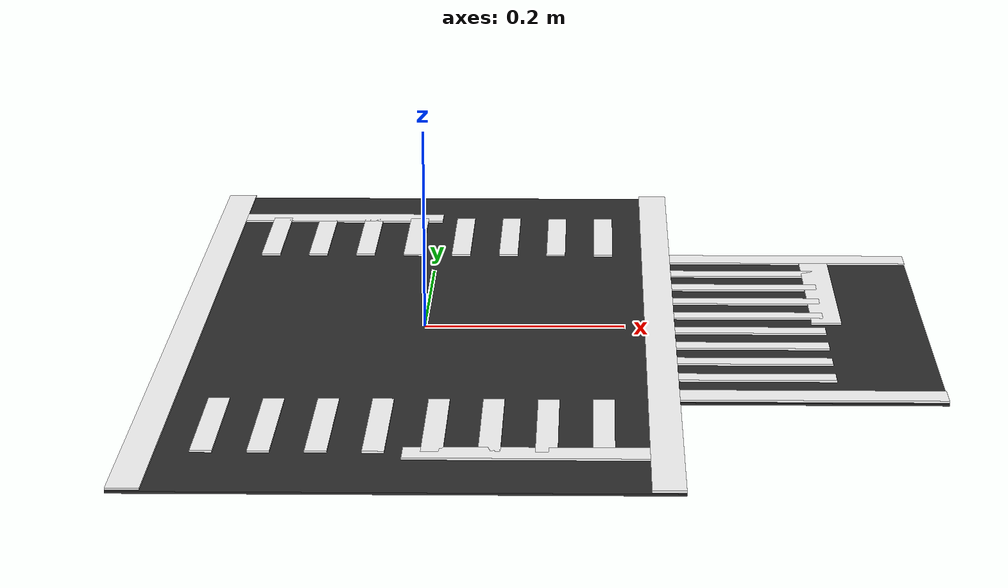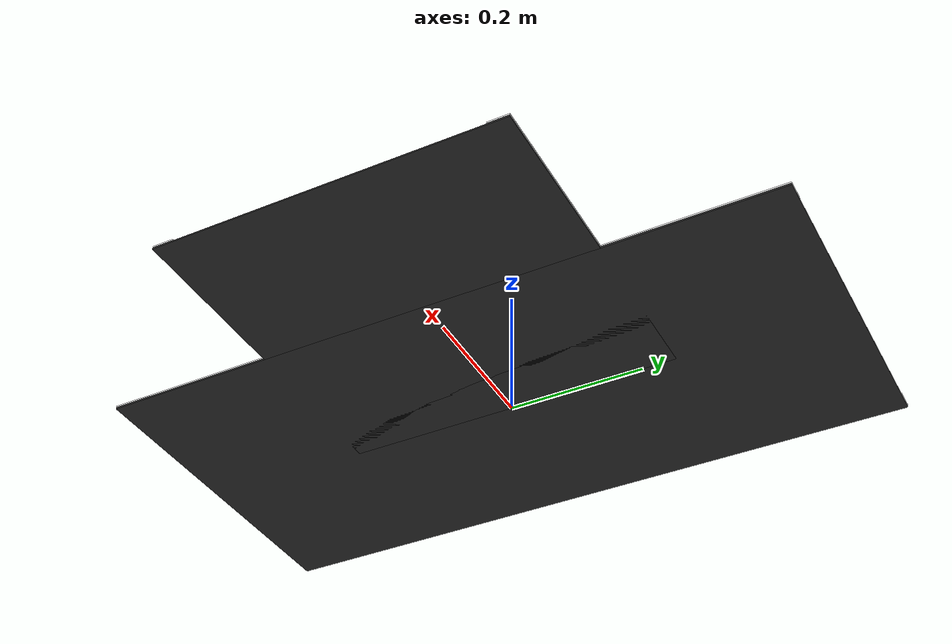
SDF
<?xml version="1.0"?>
<sdf version="1.6">
  <model name="track_t_intersection">
    <static>true</static>
    <link name="link">
      <visual name="v001">
        <pose>0.00000 0.00000 0.00100 0 0 1.57080</pose>
        <geometry>
          <box>
            <size>1.00000 0.50000 0.00200</size>
          </box>
        </geometry>
        <material>
          <ambient>0.180 0.180 0.180 1</ambient>
          <diffuse>0.180 0.180 0.180 1</diffuse>
          <specular>0.05 0.05 0.05 1</specular>
        </material>
      </visual>
      <visual name="v002">
        <pose>-0.23500 0.00000 0.00400 0 0 1.57080</pose>
        <geometry>
          <box>
            <size>1.00000 0.03000 0.00200</size>
          </box>
        </geometry>
        <material>
          <ambient>1.000 1.000 1.000 1</ambient>
          <diffuse>1.000 1.000 1.000 1</diffuse>
          <specular>0.05 0.05 0.05 1</specular>
        </material>
      </visual>
      <visual name="v003">
        <pose>0.23500 -0.00000 0.00400 0 0 1.57080</pose>
        <geometry>
          <box>
            <size>1.00000 0.03000 0.00200</size>
          </box>
        </geometry>
        <material>
          <ambient>1.000 1.000 1.000 1</ambient>
          <diffuse>1.000 1.000 1.000 1</diffuse>
          <specular>0.05 0.05 0.05 1</specular>
        </material>
      </visual>
      <visual name="v004">
        <pose>-0.17900 0.32500 0.00400 0 0 1.57080</pose>
        <geometry>
          <box>
            <size>0.15000 0.02000 0.00200</size>
          </box>
        </geometry>
        <material>
          <ambient>1.000 1.000 1.000 1</ambient>
          <diffuse>1.000 1.000 1.000 1</diffuse>
          <specular>0.05 0.05 0.05 1</specular>
        </material>
      </visual>
      <visual name="v005">
        <pose>-0.12800 0.32500 0.00400 0 0 1.57080</pose>
        <geometry>
          <box>
            <size>0.15000 0.02000 0.00200</size>
          </box>
        </geometry>
        <material>
          <ambient>1.000 1.000 1.000 1</ambient>
          <diffuse>1.000 1.000 1.000 1</diffuse>
          <specular>0.05 0.05 0.05 1</specular>
        </material>
      </visual>
      <visual name="v006">
        <pose>-0.07700 0.32500 0.00400 0 0 1.57080</pose>
        <geometry>
          <box>
            <size>0.15000 0.02000 0.00200</size>
          </box>
        </geometry>
        <material>
          <ambient>1.000 1.000 1.000 1</ambient>
          <diffuse>1.000 1.000 1.000 1</diffuse>
          <specular>0.05 0.05 0.05 1</specular>
        </material>
      </visual>
      <visual name="v007">
        <pose>-0.02600 0.32500 0.00400 0 0 1.57080</pose>
        <geometry>
          <box>
            <size>0.15000 0.02000 0.00200</size>
          </box>
        </geometry>
        <material>
          <ambient>1.000 1.000 1.000 1</ambient>
          <diffuse>1.000 1.000 1.000 1</diffuse>
          <specular>0.05 0.05 0.05 1</specular>
        </material>
      </visual>
      <visual name="v008">
        <pose>0.25000 0.00000 0.00100 0 0 0.00000</pose>
        <geometry>
          <box>
            <size>0.50000 0.50000 0.00200</size>
          </box>
        </geometry>
        <material>
          <ambient>0.180 0.180 0.180 1</ambient>
          <diffuse>0.180 0.180 0.180 1</diffuse>
          <specular>0.05 0.05 0.05 1</specular>
        </material>
      </visual>
      <visual name="v009">
        <pose>0.37500 0.23500 0.00400 0 0 0.00000</pose>
        <geometry>
          <box>
            <size>0.25000 0.03000 0.00200</size>
          </box>
        </geometry>
        <material>
          <ambient>1.000 1.000 1.000 1</ambient>
          <diffuse>1.000 1.000 1.000 1</diffuse>
          <specular>0.05 0.05 0.05 1</specular>
        </material>
      </visual>
      <visual name="v010">
        <pose>0.37500 -0.23500 0.00400 0 0 0.00000</pose>
        <geometry>
          <box>
            <size>0.25000 0.03000 0.00200</size>
          </box>
        </geometry>
        <material>
          <ambient>1.000 1.000 1.000 1</ambient>
          <diffuse>1.000 1.000 1.000 1</diffuse>
          <specular>0.05 0.05 0.05 1</specular>
        </material>
      </visual>
      <visual name="v011">
        <pose>0.32500 -0.17900 0.00400 0 0 0.00000</pose>
        <geometry>
          <box>
            <size>0.15000 0.02000 0.00200</size>
          </box>
        </geometry>
        <material>
          <ambient>1.000 1.000 1.000 1</ambient>
          <diffuse>1.000 1.000 1.000 1</diffuse>
          <specular>0.05 0.05 0.05 1</specular>
        </material>
      </visual>
      <visual name="v012">
        <pose>0.32500 -0.12800 0.00400 0 0 0.00000</pose>
        <geometry>
          <box>
            <size>0.15000 0.02000 0.00200</size>
          </box>
        </geometry>
        <material>
          <ambient>1.000 1.000 1.000 1</ambient>
          <diffuse>1.000 1.000 1.000 1</diffuse>
          <specular>0.05 0.05 0.05 1</specular>
        </material>
      </visual>
      <visual name="v013">
        <pose>0.32500 -0.07700 0.00400 0 0 0.00000</pose>
        <geometry>
          <box>
            <size>0.15000 0.02000 0.00200</size>
          </box>
        </geometry>
        <material>
          <ambient>1.000 1.000 1.000 1</ambient>
          <diffuse>1.000 1.000 1.000 1</diffuse>
          <specular>0.05 0.05 0.05 1</specular>
        </material>
      </visual>
      <visual name="v014">
        <pose>0.32500 -0.02600 0.00400 0 0 0.00000</pose>
        <geometry>
          <box>
            <size>0.15000 0.02000 0.00200</size>
          </box>
        </geometry>
        <material>
          <ambient>1.000 1.000 1.000 1</ambient>
          <diffuse>1.000 1.000 1.000 1</diffuse>
          <specular>0.05 0.05 0.05 1</specular>
        </material>
      </visual>
      <visual name="v015">
        <pose>0.02600 0.32500 0.00400 0 0 1.57080</pose>
        <geometry>
          <box>
            <size>0.15000 0.02000 0.00200</size>
          </box>
        </geometry>
        <material>
          <ambient>1.000 1.000 1.000 1</ambient>
          <diffuse>1.000 1.000 1.000 1</diffuse>
          <specular>0.05 0.05 0.05 1</specular>
        </material>
      </visual>
      <visual name="v016">
        <pose>0.07700 0.32500 0.00400 0 0 1.57080</pose>
        <geometry>
          <box>
            <size>0.15000 0.02000 0.00200</size>
          </box>
        </geometry>
        <material>
          <ambient>1.000 1.000 1.000 1</ambient>
          <diffuse>1.000 1.000 1.000 1</diffuse>
          <specular>0.05 0.05 0.05 1</specular>
        </material>
      </visual>
      <visual name="v017">
        <pose>0.12800 0.32500 0.00400 0 0 1.57080</pose>
        <geometry>
          <box>
            <size>0.15000 0.02000 0.00200</size>
          </box>
        </geometry>
        <material>
          <ambient>1.000 1.000 1.000 1</ambient>
          <diffuse>1.000 1.000 1.000 1</diffuse>
          <specular>0.05 0.05 0.05 1</specular>
        </material>
      </visual>
      <visual name="v018">
        <pose>0.17900 0.32500 0.00400 0 0 1.57080</pose>
        <geometry>
          <box>
            <size>0.15000 0.02000 0.00200</size>
          </box>
        </geometry>
        <material>
          <ambient>1.000 1.000 1.000 1</ambient>
          <diffuse>1.000 1.000 1.000 1</diffuse>
          <specular>0.05 0.05 0.05 1</specular>
        </material>
      </visual>
      <visual name="v019">
        <pose>-0.11000 0.40250 0.00400 0 0 0.00000</pose>
        <geometry>
          <box>
            <size>0.22000 0.03000 0.00200</size>
          </box>
        </geometry>
        <material>
          <ambient>1.000 1.000 1.000 1</ambient>
          <diffuse>1.000 1.000 1.000 1</diffuse>
          <specular>0.05 0.05 0.05 1</specular>
        </material>
      </visual>
      <visual name="v020">
        <pose>0.32500 0.02600 0.00400 0 0 0.00000</pose>
        <geometry>
          <box>
            <size>0.15000 0.02000 0.00200</size>
          </box>
        </geometry>
        <material>
          <ambient>1.000 1.000 1.000 1</ambient>
          <diffuse>1.000 1.000 1.000 1</diffuse>
          <specular>0.05 0.05 0.05 1</specular>
        </material>
      </visual>
      <visual name="v021">
        <pose>0.32500 0.07700 0.00400 0 0 0.00000</pose>
        <geometry>
          <box>
            <size>0.15000 0.02000 0.00200</size>
          </box>
        </geometry>
        <material>
          <ambient>1.000 1.000 1.000 1</ambient>
          <diffuse>1.000 1.000 1.000 1</diffuse>
          <specular>0.05 0.05 0.05 1</specular>
        </material>
      </visual>
      <visual name="v022">
        <pose>0.32500 0.12800 0.00400 0 0 0.00000</pose>
        <geometry>
          <box>
            <size>0.15000 0.02000 0.00200</size>
          </box>
        </geometry>
        <material>
          <ambient>1.000 1.000 1.000 1</ambient>
          <diffuse>1.000 1.000 1.000 1</diffuse>
          <specular>0.05 0.05 0.05 1</specular>
        </material>
      </visual>
      <visual name="v023">
        <pose>0.32500 0.17900 0.00400 0 0 0.00000</pose>
        <geometry>
          <box>
            <size>0.15000 0.02000 0.00200</size>
          </box>
        </geometry>
        <material>
          <ambient>1.000 1.000 1.000 1</ambient>
          <diffuse>1.000 1.000 1.000 1</diffuse>
          <specular>0.05 0.05 0.05 1</specular>
        </material>
      </visual>
      <visual name="v024">
        <pose>0.40250 0.11000 0.00400 0 0 1.57080</pose>
        <geometry>
          <box>
            <size>0.22000 0.03000 0.00200</size>
          </box>
        </geometry>
        <material>
          <ambient>1.000 1.000 1.000 1</ambient>
          <diffuse>1.000 1.000 1.000 1</diffuse>
          <specular>0.05 0.05 0.05 1</specular>
        </material>
      </visual>

      <!-- South arm — stripes run E-W (perpendicular to N-S travel) -->
      <visual name="v025"><pose>-0.17900 -0.32500 0.00400 0 0 1.57080</pose><geometry><box><size>0.15000 0.02000 0.00200</size></box></geometry><material><ambient>1.000 1.000 1.000 1</ambient><diffuse>1.000 1.000 1.000 1</diffuse><specular>0.05 0.05 0.05 1</specular></material></visual>
      <visual name="v026"><pose>-0.12800 -0.32500 0.00400 0 0 1.57080</pose><geometry><box><size>0.15000 0.02000 0.00200</size></box></geometry><material><ambient>1.000 1.000 1.000 1</ambient><diffuse>1.000 1.000 1.000 1</diffuse><specular>0.05 0.05 0.05 1</specular></material></visual>
      <visual name="v027"><pose>-0.07700 -0.32500 0.00400 0 0 1.57080</pose><geometry><box><size>0.15000 0.02000 0.00200</size></box></geometry><material><ambient>1.000 1.000 1.000 1</ambient><diffuse>1.000 1.000 1.000 1</diffuse><specular>0.05 0.05 0.05 1</specular></material></visual>
      <visual name="v028"><pose>-0.02600 -0.32500 0.00400 0 0 1.57080</pose><geometry><box><size>0.15000 0.02000 0.00200</size></box></geometry><material><ambient>1.000 1.000 1.000 1</ambient><diffuse>1.000 1.000 1.000 1</diffuse><specular>0.05 0.05 0.05 1</specular></material></visual>
      <visual name="v029"><pose> 0.02600 -0.32500 0.00400 0 0 1.57080</pose><geometry><box><size>0.15000 0.02000 0.00200</size></box></geometry><material><ambient>1.000 1.000 1.000 1</ambient><diffuse>1.000 1.000 1.000 1</diffuse><specular>0.05 0.05 0.05 1</specular></material></visual>
      <visual name="v030"><pose> 0.07700 -0.32500 0.00400 0 0 1.57080</pose><geometry><box><size>0.15000 0.02000 0.00200</size></box></geometry><material><ambient>1.000 1.000 1.000 1</ambient><diffuse>1.000 1.000 1.000 1</diffuse><specular>0.05 0.05 0.05 1</specular></material></visual>
      <visual name="v031"><pose> 0.12800 -0.32500 0.00400 0 0 1.57080</pose><geometry><box><size>0.15000 0.02000 0.00200</size></box></geometry><material><ambient>1.000 1.000 1.000 1</ambient><diffuse>1.000 1.000 1.000 1</diffuse><specular>0.05 0.05 0.05 1</specular></material></visual>
      <visual name="v032"><pose> 0.17900 -0.32500 0.00400 0 0 1.57080</pose><geometry><box><size>0.15000 0.02000 0.00200</size></box></geometry><material><ambient>1.000 1.000 1.000 1</ambient><diffuse>1.000 1.000 1.000 1</diffuse><specular>0.05 0.05 0.05 1</specular></material></visual>
      <visual name="v033"><pose>0.11000 -0.40250 0.00400 0 0 0.00000</pose><geometry><box><size>0.22000 0.03000 0.00200</size></box></geometry><material><ambient>1.000 1.000 1.000 1</ambient><diffuse>1.000 1.000 1.000 1</diffuse><specular>0.05 0.05 0.05 1</specular></material></visual>

    </link>
  </model>
</sdf>
